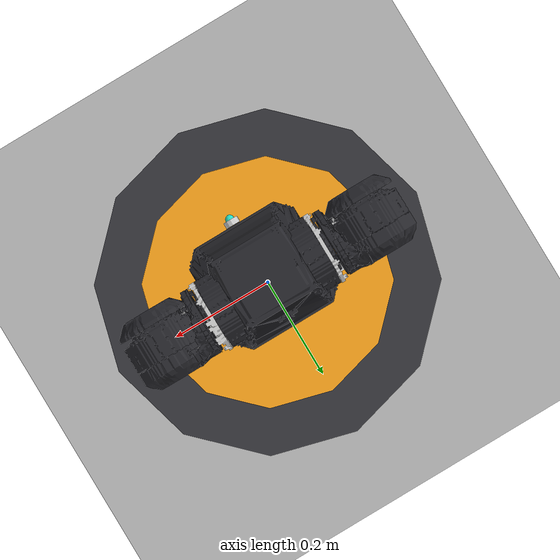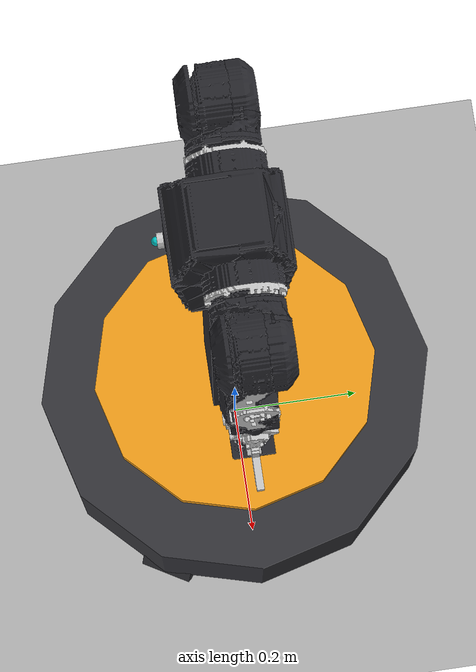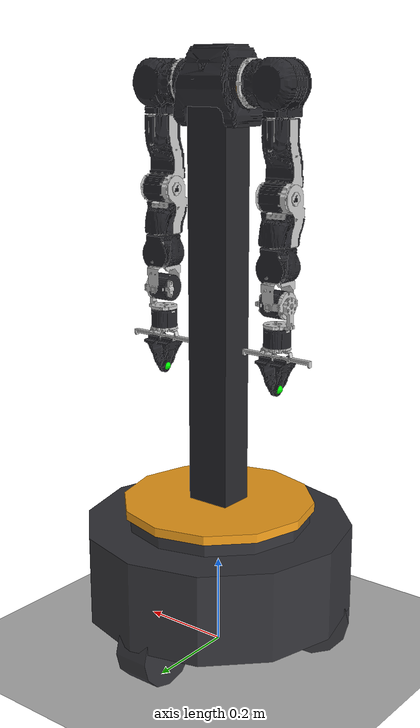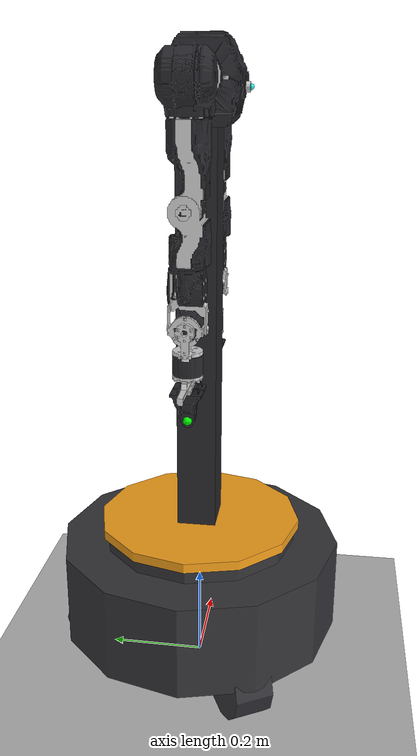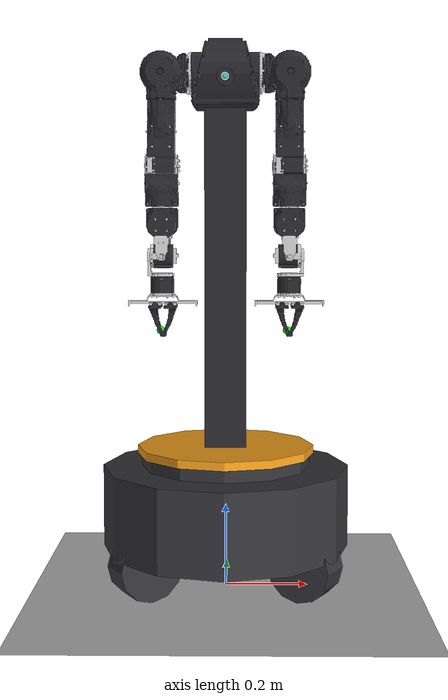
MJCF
<mujoco model="vnr_wh1">

  <compiler angle="radian" meshdir="assets/openarm" inertiafromgeom="auto"/>

  <visual>
    <global offwidth="1920" offheight="1080"/>
  </visual>

  <option gravity="0 0 -9.81" timestep="0.002" integrator="RK4"/>

  <!-- DEFAULTS                                                         -->
  <default>
    <geom condim="4" friction="1.0 0.005 0.0001" solimp="0.9 0.95 0.001" solref="0.02 1"/>

    <default class="wheel">
      <joint type="hinge" damping="0.3" armature="0.005" limited="false"/>
      <velocity gear="1" ctrlrange="-15 15"/>
    </default>

    <!-- OpenArm joint physics from bimanual.xml -->
    <default class="motor_DM8009">
      <joint frictionloss="0.1" damping="0.4" limited="true" type="hinge"/>
    </default>
    <default class="motor_DM4340">
      <joint frictionloss="0.1" damping="0.4" limited="true" type="hinge"/>
    </default>
    <default class="motor_DM4310">
      <joint frictionloss="0.1" damping="0.4" limited="true" type="hinge"/>
    </default>
    <default class="motor_finger">
      <joint limited="true" type="slide" damping="2" stiffness="0.5"/>
    </default>

    <!-- Position actuator classes for arm joints -->
    <default class="arm_DM8009">
      <position kp="120" kv="12" forcelimited="true" forcerange="-40 40"/>
    </default>
    <default class="arm_DM4340">
      <position kp="80" kv="8" forcelimited="true" forcerange="-27 27"/>
    </default>
    <default class="arm_DM4310">
      <position kp="50" kv="5" forcelimited="true" forcerange="-7 7"/>
    </default>
    <default class="arm_finger">
      <position kp="100" kv="5" ctrlrange="0 0.044" forcelimited="true" forcerange="-333 333"/>
    </default>

    <!-- Geom display classes (collision disabled for stability) -->
    <default class="visual">
      <geom contype="0" conaffinity="0" group="2" density="0"/>
    </default>
    <default class="collision">
      <geom contype="0" conaffinity="0" group="3" density="0"/>
    </default>
  </default>

  <!-- ASSETS                                                           -->
  <asset>
    <texture name="grid" type="2d" builtin="checker" rgb1="0.8 0.8 0.8" rgb2="0.6 0.6 0.6"
             width="512" height="512"/>
    <material name="floor_mat"        texture="grid" texrepeat="4 4" reflectance="0.2"/>
    <material name="dark_mat"         rgba="0.20 0.20 0.22 1" reflectance="0.08"/>
    <material name="body_mat"         rgba="0.95 0.62 0.10 1"/>
    <material name="matte_black"      rgba="0.15 0.15 0.17 1" reflectance="0.05" shininess="0.3"/>
    <material name="metal_silver"     rgba="0.796 0.796 0.796 1" reflectance="1.0"  shininess="1.0"/>
    <material name="default_material" rgba="0.7 0.7 0.7 1"/>

    <!-- body_link0 back-plate (kept for kinematic compat; visuals hidden in v0.7) -->
    <mesh name="body_col"  file="collision/body/body_link0.stl" scale="0.001 0.001 0.001"/>
    <mesh name="body_v0"   file="visual/body/body_link0_0.obj"  scale="0.001 0.001 0.001"/>
    <mesh name="body_v1"   file="visual/body/body_link0_1.obj"  scale="0.001 0.001 0.001"/>
    <mesh name="body_v2"   file="visual/body/body_link0_2.obj"  scale="0.001 0.001 0.001"/>
    <mesh name="body_v3"   file="visual/body/body_link0_3.obj"  scale="0.001 0.001 0.001"/>
    <mesh name="body_v4"   file="visual/body/body_link0_4.obj"  scale="0.001 0.001 0.001"/>
    <mesh name="body_v5"   file="visual/body/body_link0_5.obj"  scale="0.001 0.001 0.001"/>

    <!-- Arm collision meshes (right and left-mirror) -->
    <mesh name="link0_col"   file="collision/arm/link0.stl" scale="0.001  0.001 0.001"/>
    <mesh name="link0_col_l" file="collision/arm/link0.stl" scale="0.001 -0.001 0.001"/>
    <mesh name="link1_col"   file="collision/arm/link1.stl" scale="0.001  0.001 0.001"/>
    <mesh name="link1_col_l" file="collision/arm/link1.stl" scale="0.001 -0.001 0.001"/>
    <mesh name="link2_col"   file="collision/arm/link2.stl" scale="0.001  0.001 0.001"/>
    <mesh name="link2_col_l" file="collision/arm/link2.stl" scale="0.001 -0.001 0.001"/>
    <mesh name="link3_col"   file="collision/arm/link3.stl" scale="0.001  0.001 0.001"/>
    <mesh name="link3_col_l" file="collision/arm/link3.stl" scale="0.001 -0.001 0.001"/>
    <mesh name="link4_col"   file="collision/arm/link4.stl" scale="0.001  0.001 0.001"/>
    <mesh name="link5_col"   file="collision/arm/link5.stl" scale="0.001  0.001 0.001"/>
    <mesh name="link5_col_l" file="collision/arm/link5.stl" scale="0.001 -0.001 0.001"/>
    <mesh name="link6_col"   file="collision/arm/link6.stl" scale="0.001  0.001 0.001"/>
    <mesh name="link6_col_l" file="collision/arm/link6.stl" scale="0.001 -0.001 0.001"/>
    <mesh name="link7_col"   file="collision/arm/link7.stl" scale="0.001  0.001 0.001"/>
    <mesh name="link7_col_l" file="collision/arm/link7.stl" scale="0.001 -0.001 0.001"/>
    <mesh name="hand_col"     file="collision/gripper/hand.stl"    scale="0.001 0.001 0.001"/>
    <mesh name="finger_col"   file="collision/gripper/finger.stl"  scale="0.001  0.001 0.001"/>
    <mesh name="finger_col_l" file="collision/gripper/finger.stl"  scale="0.001 -0.001 0.001"/>

    <!-- Arm visual meshes -->
    <mesh name="link0_v0"   file="visual/arm/link0_0.obj" scale="0.001 0.001 0.001"/>
    <mesh name="link0_v1"   file="visual/arm/link0_1.obj" scale="0.001 0.001 0.001"/>
    <mesh name="link1_v0"   file="visual/arm/link1_0.obj" scale="0.001 0.001 0.001"/>
    <mesh name="link1_v2"   file="visual/arm/link1_2.obj" scale="0.001 0.001 0.001"/>
    <mesh name="link1_v3"   file="visual/arm/link1_3.obj" scale="0.001 0.001 0.001"/>
    <mesh name="link2_v0"   file="visual/arm/link2_0.obj" scale="0.001 0.001 0.001"/>
    <mesh name="link2_v1"   file="visual/arm/link2_1.obj" scale="0.001 0.001 0.001"/>
    <mesh name="link2_v2"   file="visual/arm/link2_2.obj" scale="0.001 0.001 0.001"/>
    <mesh name="link3_v0"   file="visual/arm/link3_0.obj" scale="0.001 0.001 0.001"/>
    <mesh name="link3_v1"   file="visual/arm/link3_1.obj" scale="0.001 0.001 0.001"/>
    <mesh name="link3_v2"   file="visual/arm/link3_2.obj" scale="0.001 0.001 0.001"/>
    <mesh name="link4_v0"   file="visual/arm/link4_0.obj" scale="0.001 0.001 0.001"/>
    <mesh name="link4_v1"   file="visual/arm/link4_1.obj" scale="0.001 0.001 0.001"/>
    <mesh name="link4_v2"   file="visual/arm/link4_2.obj" scale="0.001 0.001 0.001"/>
    <mesh name="link5_v0"   file="visual/arm/link5_0.obj" scale="0.001 0.001 0.001"/>
    <mesh name="link5_v1"   file="visual/arm/link5_1.obj" scale="0.001 0.001 0.001"/>
    <mesh name="link5_v2"   file="visual/arm/link5_2.obj" scale="0.001 0.001 0.001"/>
    <mesh name="link6_v0"   file="visual/arm/link6_0.obj" scale="0.001 0.001 0.001"/>
    <mesh name="link6_v1"   file="visual/arm/link6_1.obj" scale="0.001 0.001 0.001"/>
    <mesh name="link6_v0_l" file="visual/arm/link6_0.obj" scale="0.001 -0.001 0.001"/>
    <mesh name="link6_v1_l" file="visual/arm/link6_1.obj" scale="0.001 -0.001 0.001"/>
    <mesh name="link7_v0"   file="visual/arm/link7_0.obj" scale="0.001 0.001 0.001"/>
    <mesh name="link7_v1"   file="visual/arm/link7_1.obj" scale="0.001 0.001 0.001"/>
    <mesh name="link7_v0_l" file="visual/arm/link7_0.obj" scale="0.001 -0.001 0.001"/>
    <mesh name="link7_v1_l" file="visual/arm/link7_1.obj" scale="0.001 -0.001 0.001"/>
    <mesh name="hand_v0"    file="visual/gripper/hand_0.obj"    scale="0.001 0.001 0.001"/>
    <mesh name="hand_v1"    file="visual/gripper/hand_1.obj"    scale="0.001 0.001 0.001"/>
    <mesh name="finger_v0"   file="visual/gripper/finger_0.obj" scale="0.001  0.001 0.001"/>
    <mesh name="finger_v1"   file="visual/gripper/finger_1.obj" scale="0.001  0.001 0.001"/>
    <mesh name="finger_v0_l" file="visual/gripper/finger_0.obj" scale="0.001 -0.001 0.001"/>
    <mesh name="finger_v1_l" file="visual/gripper/finger_1.obj" scale="0.001 -0.001 0.001"/>
  </asset>

  <!-- WORLD                                                            -->
  <worldbody>
    <light name="sky"   pos="0 0 6"   dir="0 0 -1"    ambient="0.25 0.25 0.25" diffuse="1.0 1.0 1.0" specular="0.3 0.3 0.3" castshadow="false"/>
    <light name="fill"  pos="3 -3 4"  dir="-1 1 -1"   ambient="0.10 0.10 0.10" diffuse="0.5 0.5 0.6" specular="0 0 0"         castshadow="false"/>
    <light name="front" pos="0 6 3"   dir="0 -1 -0.4" ambient="0.10 0.10 0.10" diffuse="0.6 0.6 0.6" specular="0.15 0.15 0.15" castshadow="false"/>
    <geom name="floor" type="plane" size="8 8 0.1" material="floor_mat" condim="3"/>

    <body name="base" pos="0 0 0.20">
      <freejoint name="root"/>
      <geom name="base_geom" type="cylinder" size="0.30 0.10" material="dark_mat" mass="20"/>
      <site name="imu" pos="0 0 0" size="0.01"/>

      <!-- 3× omnidirectional wheels -->
      <body name="wheel_f"  pos="0 0.22 -0.12">
        <joint name="wheel_f" class="wheel" axis="1 0 0"/>
        <geom type="cylinder" size="0.080 0.040" zaxis="1 0 0" material="dark_mat" mass="0.8" friction="2 0.01 0.001"/>
        <geom type="cylinder" size="0.055 0.039" zaxis="1 0 0" material="body_mat" mass="0"/>
      </body>
      <body name="wheel_bl" pos="-0.19 -0.11 -0.12">
        <joint name="wheel_bl" class="wheel" axis="-0.5 0.866 0"/>
        <geom type="cylinder" size="0.080 0.040" zaxis="-0.5 0.866 0" material="dark_mat" mass="0.8" friction="2 0.01 0.001"/>
        <geom type="cylinder" size="0.055 0.039" zaxis="-0.5 0.866 0" material="body_mat" mass="0"/>
      </body>
      <body name="wheel_br" pos="0.19 -0.11 -0.12">
        <joint name="wheel_br" class="wheel" axis="0.5 0.866 0"/>
        <geom type="cylinder" size="0.080 0.040" zaxis="0.5 0.866 0" material="dark_mat" mass="0.8" friction="2 0.01 0.001"/>
        <geom type="cylinder" size="0.055 0.039" zaxis="0.5 0.866 0" material="body_mat" mass="0"/>
      </body>

      <geom name="waist_collar" type="cylinder" size="0.205 0.015"
            pos="0 0 0.115" material="dark_mat"/>
      <geom name="waist_accent" type="cylinder" size="0.215 0.010"
            pos="0 0 0.140" material="body_mat"/>

      <body name="openarm_body_link0" pos="0 0 0.35" quat="0.7071068 0 0 0.7071068">
        <inertial pos="0.0 0.0 0.0" quat="1.0 0.0 0.0 0.0" mass="13.89"
                  diaginertia="1.653 1.653 0.051"/>
        <geom type="mesh" mesh="body_col" class="collision"/>
        <geom type="mesh" material="matte_black"  mesh="body_v0" class="visual" group="4"/>
        <geom type="mesh" material="matte_black"  mesh="body_v1" class="visual" group="4"/>
        <geom type="mesh" material="matte_black"  mesh="body_v2" class="visual" group="4"/>
        <geom type="mesh" material="matte_black"  mesh="body_v3" class="visual" group="4"/>
        <geom type="mesh" material="metal_silver" mesh="body_v4" class="visual" group="4"/>
        <geom name="shoulder_bridge" type="mesh" material="matte_black" mesh="body_v5" class="visual"/>

        <geom name="torso_column" type="box" size="0.040 0.050 0.460"
              pos="0 0 0.240" material="matte_black"/>
        <geom name="torso_band"   type="box" size="0.045 0.055 0.012"
              pos="0 0 0.680" material="body_mat"/>

        <geom name="head_cam_housing" type="cylinder" size="0.020 0.015"
              pos="-0.070 0 0.680" quat="0.7071068 0 0.7071068 0"
              material="matte_black"/>
        <geom name="head_cam_lens"    type="cylinder" size="0.010 0.004"
              pos="-0.090 0 0.680" quat="0.7071068 0 0.7071068 0"
              material="metal_silver"/>
        <site name="head_cam"  pos="-0.095 0 0.680" size="0.006" rgba="0 1 1 0.8"/>

        <!-- =================== LEFT ARM (verbatim from openarm_bimanual.xml) =================== -->
        <body name="openarm_left_link0" pos="0.0 0.031 0.698"
              quat="0.7071054825112363 -0.7071080798594735 0.0 0.0">
          <inertial pos="-0.0009483362816297526 0.0001580207020448382 0.03076860287587199"
                    quat="1.0 0.0 0.0 0.0" mass="1.1432284943239561"
                    diaginertia="0.001128 0.000962 0.00147"/>
          <geom type="mesh" mesh="link0_col_l" class="collision"/>
          <geom type="mesh" material="metal_silver" mesh="link0_v0" class="visual"/>
          <geom type="mesh" material="matte_black"  mesh="link0_v1" class="visual"/>

          <body name="openarm_left_link1" pos="0.0 0.0 0.0625" quat="1.0 0.0 0.0 0.0">
            <joint name="openarm_left_joint1" class="motor_DM8009"
                   range="-3.490659 1.3962629999999998" axis="0 0 1"/>
            <inertial pos="0.0011467657911800769 3.319987657026362e-05 0.05395284380736254"
                      quat="1.0 0.0 0.0 0.0" mass="1.1416684646202298"
                      diaginertia="0.001567 0.001273 0.001016"/>
            <geom pos="-0.0 0.0 -0.0625" type="mesh" mesh="link1_col_l" class="collision"/>
            <geom pos="-0.0 0.0 -0.0625" type="mesh" material="matte_black" mesh="link1_v0" class="visual"/>
            <geom pos="-0.0 0.0 -0.0625" type="mesh" material="matte_black" mesh="link1_v2" class="visual"/>
            <geom pos="-0.0 0.0 -0.0625" type="mesh" material="matte_black" mesh="link1_v3" class="visual"/>

            <body name="openarm_left_link2" pos="-0.0301 0.0 0.06"
                  quat="0.7071067811882787 -0.7071067811848163 0.0 0.0">
              <joint name="openarm_left_joint2" class="motor_DM8009"
                     range="-3.3161253267948965 0.17453267320510335" axis="-1 0 0"/>
              <inertial pos="0.00839629182351943 -2.0145102027597523e-08 0.03256649300522363"
                        quat="1.0 0.0 0.0 0.0" mass="0.2775092746011571"
                        diaginertia="0.000359 0.000376 0.000232"/>
              <geom pos="0.0301 0.0 -0.1225" type="mesh" mesh="link2_col_l" class="collision"/>
              <geom pos="0.0301 0.0 -0.1225" type="mesh" material="matte_black" mesh="link2_v0" class="visual"/>
              <geom pos="0.0301 0.0 -0.1225" type="mesh" material="matte_black" mesh="link2_v1" class="visual"/>
              <geom pos="0.0301 0.0 -0.1225" type="mesh" material="matte_black" mesh="link2_v2" class="visual"/>

              <body name="openarm_left_link3" pos="0.0301 0.0 0.06625" quat="1.0 0.0 0.0 0.0">
                <joint name="openarm_left_joint3" class="motor_DM4340"
                       range="-1.570796 1.570796" axis="0 0 1"/>
                <inertial pos="-0.002104752099628911 0.0005549085042607548 0.08847470545721961"
                          quat="1.0 0.0 0.0 0.0" mass="1.073863338202347"
                          diaginertia="0.004372 0.004319 0.000661"/>
                <geom pos="-0.0 -0.0 -0.18875" type="mesh" mesh="link3_col_l" class="collision"/>
                <geom pos="-0.0 -0.0 -0.18875" type="mesh" material="matte_black"  mesh="link3_v0" class="visual"/>
                <geom pos="-0.0 -0.0 -0.18875" type="mesh" material="matte_black"  mesh="link3_v1" class="visual"/>
                <geom pos="-0.0 -0.0 -0.18875" type="mesh" material="metal_silver" mesh="link3_v2" class="visual"/>

                <body name="openarm_left_link4" pos="-0.0 0.0315 0.15375" quat="1.0 0.0 0.0 0.0">
                  <joint name="openarm_left_joint4" class="motor_DM4340"
                         range="0.0 2.443461" axis="0 1 0"/>
                  <inertial pos="-0.0029006831074562967 -0.03030575826634669 0.06339637422196209"
                            quat="1.0 0.0 0.0 0.0" mass="0.6348534566833373"
                            diaginertia="0.001577 0.001346 0.001104"/>
                  <geom pos="0.0 -0.0315 -0.3425" type="mesh" mesh="link4_col" class="collision"/>
                  <geom pos="0.0 -0.0315 -0.3425" type="mesh" material="matte_black"  mesh="link4_v0" class="visual"/>
                  <geom pos="0.0 -0.0315 -0.3425" type="mesh" material="metal_silver" mesh="link4_v1" class="visual"/>
                  <geom pos="0.0 -0.0315 -0.3425" type="mesh" material="matte_black"  mesh="link4_v2" class="visual"/>

                  <body name="openarm_left_link5" pos="0.0 -0.0315 0.0955" quat="1.0 0.0 0.0 0.0">
                    <joint name="openarm_left_joint5" class="motor_DM4310"
                           range="-1.570796 1.570796" axis="0 0 1"/>
                    <inertial pos="-0.003049665024221911 0.0008866902457326625 0.043079803024980934"
                              quat="1.0 0.0 0.0 0.0" mass="0.6156588026168502"
                              diaginertia="0.000423 0.000445 0.000324"/>
                    <geom pos="-0.0 -0.0 -0.438" type="mesh" mesh="link5_col_l" class="collision"/>
                    <geom pos="-0.0 -0.0 -0.438" type="mesh" material="matte_black"  mesh="link5_v0" class="visual"/>
                    <geom pos="-0.0 -0.0 -0.438" type="mesh" material="metal_silver" mesh="link5_v1" class="visual"/>
                    <geom pos="-0.0 -0.0 -0.438" type="mesh" material="matte_black"  mesh="link5_v2" class="visual"/>

                    <body name="openarm_left_link6" pos="0.0375 0.0 0.1205" quat="1.0 0.0 0.0 0.0">
                      <joint name="openarm_left_joint6" class="motor_DM4310"
                             range="-0.785398 0.785398" axis="1 0 0"/>
                      <inertial pos="-0.037136587005447405 0.00033230528343419053 -9.498374522309838e-05"
                                quat="1.0 0.0 0.0 0.0" mass="0.475202773187987"
                                diaginertia="0.000143 0.000157 0.000159"/>
                      <geom pos="-0.0375 -0.0 -0.5585" type="mesh" mesh="link6_col_l" class="collision"/>
                      <geom pos="-0.0375 -0.0 -0.5585" type="mesh" material="matte_black"  mesh="link6_v0_l" class="visual"/>
                      <geom pos="-0.0375 -0.0 -0.5585" type="mesh" material="metal_silver" mesh="link6_v1_l" class="visual"/>

                      <body name="openarm_left_link7" pos="-0.0375 0.0 0.0" quat="1.0 0.0 0.0 0.0">
                        <joint name="openarm_left_joint7" class="motor_DM4310"
                               range="-1.570796 1.570796" axis="0 -1 0"/>
                        <inertial pos="6.875510271106056e-05 -0.01766175250761268 0.06651945409987448"
                                  quat="1.0 0.0 0.0 0.0" mass="0.4659771327380578"
                                  diaginertia="0.000639 0.000497 0.000342"/>
                        <geom pos="0.0 -0.0 -0.5585" type="mesh" mesh="link7_col_l" class="collision"/>
                        <geom pos="0.0 -0.0 -0.5585" type="mesh" material="metal_silver" mesh="link7_v0_l" class="visual"/>
                        <geom pos="0.0 -0.0 -0.5585" type="mesh" material="matte_black"  mesh="link7_v1_l" class="visual"/>

                        <body name="openarm_left_link8" pos="1e-06 0.0205 0.0" quat="1.0 0.0 0.0 0.0">
                          <body name="openarm_left_hand" pos="0 -0.025 0.1001" quat="1.0 0.0 0.0 0.0">
                            <inertial pos="0.0 0.002 0.01" quat="1.0 0.0 0.0 0.0" mass="0.15"
                                      diaginertia="0.0001 0.00025 0.00017"/>
                            <geom pos="0.0 0.005 -0.6585" type="mesh" mesh="hand_col" class="collision"/>
                            <geom pos="0.0 0.005 -0.6585" type="mesh" material="metal_silver" mesh="hand_v0" class="visual"/>
                            <geom pos="0.0 0.005 -0.6585" type="mesh" material="metal_silver" mesh="hand_v1" class="visual"/>
                            <site name="l_tcp" pos="0 0 0.08" size="0.01" rgba="0 1 0 1"/>

                            <body name="openarm_left_right_finger" pos="0 0.00 0.015">
                              <joint name="openarm_left_finger_joint1" class="motor_finger"
                                     range="0.0 0.044" axis="0 -1 0"/>
                              <inertial pos="0.0064528 -0.01702 0.0219685" quat="1.0 0.0 0.0 0.0"
                                        mass="0.03602545343277134"
                                        diaginertia="2.375e-06 2.375e-06 7.5e-07"/>
                              <geom pos="0.0 0.05 -0.673001" type="mesh" mesh="finger_col_l" class="collision"/>
                              <geom pos="0.0 0.05 -0.673001" type="mesh" material="default_material" mesh="finger_v0_l" class="visual"/>
                              <geom pos="0.0 0.05 -0.673001" type="mesh" material="matte_black"    mesh="finger_v1_l" class="visual"/>
                            </body>
                            <body name="openarm_left_left_finger" pos="0 0.012 0.015">
                              <joint name="openarm_left_finger_joint2" class="motor_finger"
                                     range="0.0 0.044" axis="0 1 0"/>
                              <inertial pos="0.0064528 0.01702 0.0219685" quat="1.0 0.0 0.0 0.0"
                                        mass="0.03602545343277134"
                                        diaginertia="2.375e-06 2.375e-06 7.5e-07"/>
                              <geom pos="0.0 -0.05 -0.673001" type="mesh" mesh="finger_col"  class="collision"/>
                              <geom pos="0.0 -0.05 -0.673001" type="mesh" material="default_material" mesh="finger_v0" class="visual"/>
                              <geom pos="0.0 -0.05 -0.673001" type="mesh" material="matte_black"    mesh="finger_v1" class="visual"/>
                            </body>
                          </body>
                        </body>
                      </body>
                    </body>
                  </body>
                </body>
              </body>
            </body>
          </body>
        </body>

        <!-- =================== RIGHT ARM (verbatim from openarm_bimanual.xml) ================== -->
        <body name="openarm_right_link0" pos="0.0 -0.031 0.698"
              quat="0.7071054825112363 0.7071080798594735 0.0 0.0">
          <inertial pos="-0.0009483362816297526 0.0001580207020448382 0.03076860287587199"
                    quat="1.0 0.0 0.0 0.0" mass="1.1432284943239561"
                    diaginertia="0.001128 0.000962 0.00147"/>
          <geom type="mesh" mesh="link0_col" class="collision"/>
          <geom type="mesh" material="metal_silver" mesh="link0_v0" class="visual"/>
          <geom type="mesh" material="matte_black"  mesh="link0_v1" class="visual"/>

          <body name="openarm_right_link1" pos="0.0 0.0 0.0625" quat="1.0 0.0 0.0 0.0">
            <joint name="openarm_right_joint1" class="motor_DM8009"
                   range="-1.396263 3.490659" axis="0 0 1"/>
            <inertial pos="0.0011467657911800769 3.319987657026362e-05 0.05395284380736254"
                      quat="1.0 0.0 0.0 0.0" mass="1.1416684646202298"
                      diaginertia="0.001567 0.001273 0.001016"/>
            <geom pos="-0.0 0.0 -0.0625" type="mesh" mesh="link1_col" class="collision"/>
            <geom pos="-0.0 0.0 -0.0625" type="mesh" material="matte_black" mesh="link1_v0" class="visual"/>
            <geom pos="-0.0 0.0 -0.0625" type="mesh" material="matte_black" mesh="link1_v2" class="visual"/>
            <geom pos="-0.0 0.0 -0.0625" type="mesh" material="matte_black" mesh="link1_v3" class="visual"/>

            <body name="openarm_right_link2" pos="-0.0301 0.0 0.06"
                  quat="0.7071067811882787 0.7071067811848163 0.0 0.0">
              <joint name="openarm_right_joint2" class="motor_DM8009"
                     range="-0.17453267320510335 3.3161253267948965" axis="-1 0 0"/>
              <inertial pos="0.00839629182351943 -2.0145102027597523e-08 0.03256649300522363"
                        quat="1.0 0.0 0.0 0.0" mass="0.2775092746011571"
                        diaginertia="0.000359 0.000376 0.000232"/>
              <geom pos="0.0301 0.0 -0.1225" type="mesh" mesh="link2_col" class="collision"/>
              <geom pos="0.0301 0.0 -0.1225" type="mesh" material="matte_black" mesh="link2_v0" class="visual"/>
              <geom pos="0.0301 0.0 -0.1225" type="mesh" material="matte_black" mesh="link2_v1" class="visual"/>
              <geom pos="0.0301 0.0 -0.1225" type="mesh" material="matte_black" mesh="link2_v2" class="visual"/>

              <body name="openarm_right_link3" pos="0.0301 0.0 0.06625" quat="1.0 0.0 0.0 0.0">
                <joint name="openarm_right_joint3" class="motor_DM4340"
                       range="-1.570796 1.570796" axis="0 0 1"/>
                <inertial pos="-0.002104752099628911 0.0005549085042607548 0.08847470545721961"
                          quat="1.0 0.0 0.0 0.0" mass="1.073863338202347"
                          diaginertia="0.004372 0.004319 0.000661"/>
                <geom pos="-0.0 -0.0 -0.18875" type="mesh" mesh="link3_col" class="collision"/>
                <geom pos="-0.0 -0.0 -0.18875" type="mesh" material="matte_black"  mesh="link3_v0" class="visual"/>
                <geom pos="-0.0 -0.0 -0.18875" type="mesh" material="matte_black"  mesh="link3_v1" class="visual"/>
                <geom pos="-0.0 -0.0 -0.18875" type="mesh" material="metal_silver" mesh="link3_v2" class="visual"/>

                <body name="openarm_right_link4" pos="-0.0 0.0315 0.15375" quat="1.0 0.0 0.0 0.0">
                  <joint name="openarm_right_joint4" class="motor_DM4340"
                         range="0.0 2.443461" axis="0 1 0"/>
                  <inertial pos="-0.0029006831074562967 -0.03030575826634669 0.06339637422196209"
                            quat="1.0 0.0 0.0 0.0" mass="0.6348534566833373"
                            diaginertia="0.001577 0.001346 0.001104"/>
                  <geom pos="0.0 -0.0315 -0.3425" type="mesh" mesh="link4_col" class="collision"/>
                  <geom pos="0.0 -0.0315 -0.3425" type="mesh" material="matte_black"  mesh="link4_v0" class="visual"/>
                  <geom pos="0.0 -0.0315 -0.3425" type="mesh" material="metal_silver" mesh="link4_v1" class="visual"/>
                  <geom pos="0.0 -0.0315 -0.3425" type="mesh" material="matte_black"  mesh="link4_v2" class="visual"/>

                  <body name="openarm_right_link5" pos="0.0 -0.0315 0.0955" quat="1.0 0.0 0.0 0.0">
                    <joint name="openarm_right_joint5" class="motor_DM4310"
                           range="-1.570796 1.570796" axis="0 0 1"/>
                    <inertial pos="-0.003049665024221911 0.0008866902457326625 0.043079803024980934"
                              quat="1.0 0.0 0.0 0.0" mass="0.6156588026168502"
                              diaginertia="0.000423 0.000445 0.000324"/>
                    <geom pos="-0.0 -0.0 -0.438" type="mesh" mesh="link5_col" class="collision"/>
                    <geom pos="-0.0 -0.0 -0.438" type="mesh" material="matte_black"  mesh="link5_v0" class="visual"/>
                    <geom pos="-0.0 -0.0 -0.438" type="mesh" material="metal_silver" mesh="link5_v1" class="visual"/>
                    <geom pos="-0.0 -0.0 -0.438" type="mesh" material="matte_black"  mesh="link5_v2" class="visual"/>

                    <body name="openarm_right_link6" pos="0.0375 0.0 0.1205" quat="1.0 0.0 0.0 0.0">
                      <joint name="openarm_right_joint6" class="motor_DM4310"
                             range="-0.785398 0.785398" axis="1 0 0"/>
                      <inertial pos="-0.037136587005447405 0.00033230528343419053 -9.498374522309838e-05"
                                quat="1.0 0.0 0.0 0.0" mass="0.475202773187987"
                                diaginertia="0.000143 0.000157 0.000159"/>
                      <geom pos="-0.0375 -0.0 -0.5585" type="mesh" mesh="link6_col" class="collision"/>
                      <geom pos="-0.0375 -0.0 -0.5585" type="mesh" material="matte_black"  mesh="link6_v0" class="visual"/>
                      <geom pos="-0.0375 -0.0 -0.5585" type="mesh" material="metal_silver" mesh="link6_v1" class="visual"/>

                      <body name="openarm_right_link7" pos="-0.0375 0.0 0.0" quat="1.0 0.0 0.0 0.0">
                        <joint name="openarm_right_joint7" class="motor_DM4310"
                               range="-1.570796 1.570796" axis="0 1 0"/>
                        <inertial pos="6.875510271106056e-05 -0.01766175250761268 0.06651945409987448"
                                  quat="1.0 0.0 0.0 0.0" mass="0.4659771327380578"
                                  diaginertia="0.000639 0.000497 0.000342"/>
                        <geom pos="0.0 -0.0 -0.5585" type="mesh" mesh="link7_col" class="collision"/>
                        <geom pos="0.0 -0.0 -0.5585" type="mesh" material="metal_silver" mesh="link7_v0" class="visual"/>
                        <geom pos="0.0 -0.0 -0.5585" type="mesh" material="matte_black"  mesh="link7_v1" class="visual"/>

                        <body name="openarm_right_link8" pos="1e-06 0.0205 0.0" quat="1.0 0.0 0.0 0.0">
                          <body name="openarm_right_hand" pos="0 -0.025 0.1001" quat="1.0 0.0 0.0 0.0">
                            <inertial pos="0.0 0.002 0.01" quat="1.0 0.0 0.0 0.0" mass="0.15"
                                      diaginertia="0.0001 0.00025 0.00017"/>
                            <geom pos="0.0 0.005 -0.6585" type="mesh" mesh="hand_col" class="collision"/>
                            <geom pos="0.0 0.005 -0.6585" type="mesh" material="metal_silver" mesh="hand_v0" class="visual"/>
                            <geom pos="0.0 0.005 -0.6585" type="mesh" material="metal_silver" mesh="hand_v1" class="visual"/>
                            <site name="r_tcp" pos="0 0 0.08" size="0.01" rgba="0 1 0 1"/>

                            <body name="openarm_right_right_finger" pos="0 0.00 0.015">
                              <joint name="openarm_right_finger_joint1" class="motor_finger"
                                     range="0.0 0.044" axis="0 -1 0"/>
                              <inertial pos="0.0064528 -0.01702 0.0219685" quat="1.0 0.0 0.0 0.0"
                                        mass="0.03602545343277134"
                                        diaginertia="2.375e-06 2.375e-06 7.5e-07"/>
                              <geom pos="0.0 0.05 -0.673001" type="mesh" mesh="finger_col_l" class="collision"/>
                              <geom pos="0.0 0.05 -0.673001" type="mesh" material="default_material" mesh="finger_v0_l" class="visual"/>
                              <geom pos="0.0 0.05 -0.673001" type="mesh" material="matte_black"    mesh="finger_v1_l" class="visual"/>
                            </body>
                            <body name="openarm_right_left_finger" pos="0 0.012 0.015">
                              <joint name="openarm_right_finger_joint2" class="motor_finger"
                                     range="0.0 0.044" axis="0 1 0"/>
                              <inertial pos="0.0064528 0.01702 0.0219685" quat="1.0 0.0 0.0 0.0"
                                        mass="0.03602545343277134"
                                        diaginertia="2.375e-06 2.375e-06 7.5e-07"/>
                              <geom pos="0.0 -0.05 -0.673001" type="mesh" mesh="finger_col"  class="collision"/>
                              <geom pos="0.0 -0.05 -0.673001" type="mesh" material="default_material" mesh="finger_v0" class="visual"/>
                              <geom pos="0.0 -0.05 -0.673001" type="mesh" material="matte_black"    mesh="finger_v1" class="visual"/>
                            </body>
                          </body>
                        </body>
                      </body>
                    </body>
                  </body>
                </body>
              </body>
            </body>
          </body>
        </body>

      </body> <!-- /openarm_body_link0 -->
    </body> <!-- /base -->
  </worldbody>

  <!-- TENDON + EQUALITY (gripper coupling)                             -->
  <tendon>
    <fixed name="split_left">
      <joint joint="openarm_left_finger_joint1"  coef="0.5"/>
      <joint joint="openarm_left_finger_joint2"  coef="0.5"/>
    </fixed>
    <fixed name="split_right">
      <joint joint="openarm_right_finger_joint1" coef="0.5"/>
      <joint joint="openarm_right_finger_joint2" coef="0.5"/>
    </fixed>
  </tendon>

  <equality>
    <joint joint1="openarm_left_finger_joint1"  joint2="openarm_left_finger_joint2"
           solimp="0.95 0.99 0.001" solref="0.005 1"/>
    <joint joint1="openarm_right_finger_joint1" joint2="openarm_right_finger_joint2"
           solimp="0.95 0.99 0.001" solref="0.005 1"/>
  </equality>

  <!-- ACTUATORS                                                        -->
  <actuator>
    <!-- Wheels -->
    <velocity name="wheel_f"  joint="wheel_f"  class="wheel"/>
    <velocity name="wheel_bl" joint="wheel_bl" class="wheel"/>
    <velocity name="wheel_br" joint="wheel_br" class="wheel"/>

    <!-- Left arm (7-DOF + gripper) -->
    <position name="l_j1" joint="openarm_left_joint1" class="arm_DM8009" ctrlrange="-3.490659 1.396263"/>
    <position name="l_j2" joint="openarm_left_joint2" class="arm_DM8009" ctrlrange="-3.316125 0.174533"/>
    <position name="l_j3" joint="openarm_left_joint3" class="arm_DM4340" ctrlrange="-1.570796 1.570796"/>
    <position name="l_j4" joint="openarm_left_joint4" class="arm_DM4340" ctrlrange="0.0 2.443461"/>
    <position name="l_j5" joint="openarm_left_joint5" class="arm_DM4310" ctrlrange="-1.570796 1.570796"/>
    <position name="l_j6" joint="openarm_left_joint6" class="arm_DM4310" ctrlrange="-0.785398 0.785398"/>
    <position name="l_j7" joint="openarm_left_joint7" class="arm_DM4310" ctrlrange="-1.570796 1.570796"/>
    <position name="l_grip" joint="openarm_left_finger_joint1" class="arm_finger"/>

    <!-- Right arm (7-DOF + gripper) -->
    <position name="r_j1" joint="openarm_right_joint1" class="arm_DM8009" ctrlrange="-1.396263 3.490659"/>
    <position name="r_j2" joint="openarm_right_joint2" class="arm_DM8009" ctrlrange="-0.174533 3.316125"/>
    <position name="r_j3" joint="openarm_right_joint3" class="arm_DM4340" ctrlrange="-1.570796 1.570796"/>
    <position name="r_j4" joint="openarm_right_joint4" class="arm_DM4340" ctrlrange="0.0 2.443461"/>
    <position name="r_j5" joint="openarm_right_joint5" class="arm_DM4310" ctrlrange="-1.570796 1.570796"/>
    <position name="r_j6" joint="openarm_right_joint6" class="arm_DM4310" ctrlrange="-0.785398 0.785398"/>
    <position name="r_j7" joint="openarm_right_joint7" class="arm_DM4310" ctrlrange="-1.570796 1.570796"/>
    <position name="r_grip" joint="openarm_right_finger_joint1" class="arm_finger"/>
  </actuator>

  <!-- CONTACT EXCLUSIONS                                               -->
  <contact>
    <exclude body1="base"               body2="openarm_body_link0"/>
    <exclude body1="openarm_body_link0" body2="openarm_left_link0"/>
    <exclude body1="openarm_body_link0" body2="openarm_right_link0"/>
    <!-- Left arm adjacency -->
    <exclude body1="openarm_left_link0" body2="openarm_left_link1"/>
    <exclude body1="openarm_left_link0" body2="openarm_left_link2"/>
    <exclude body1="openarm_left_link0" body2="openarm_left_link3"/>
    <exclude body1="openarm_left_link1" body2="openarm_left_link2"/>
    <exclude body1="openarm_left_link1" body2="openarm_left_link3"/>
    <exclude body1="openarm_left_link2" body2="openarm_left_link3"/>
    <exclude body1="openarm_left_link3" body2="openarm_left_link4"/>
    <exclude body1="openarm_left_link4" body2="openarm_left_link5"/>
    <exclude body1="openarm_left_link5" body2="openarm_left_link6"/>
    <exclude body1="openarm_left_link5" body2="openarm_left_link7"/>
    <exclude body1="openarm_left_link6" body2="openarm_left_link7"/>
    <exclude body1="openarm_left_hand"  body2="openarm_left_right_finger"/>
    <exclude body1="openarm_left_hand"  body2="openarm_left_left_finger"/>
    <!-- Right arm adjacency -->
    <exclude body1="openarm_right_link0" body2="openarm_right_link1"/>
    <exclude body1="openarm_right_link0" body2="openarm_right_link2"/>
    <exclude body1="openarm_right_link0" body2="openarm_right_link3"/>
    <exclude body1="openarm_right_link1" body2="openarm_right_link2"/>
    <exclude body1="openarm_right_link1" body2="openarm_right_link3"/>
    <exclude body1="openarm_right_link2" body2="openarm_right_link3"/>
    <exclude body1="openarm_right_link3" body2="openarm_right_link4"/>
    <exclude body1="openarm_right_link4" body2="openarm_right_link5"/>
    <exclude body1="openarm_right_link5" body2="openarm_right_link6"/>
    <exclude body1="openarm_right_link5" body2="openarm_right_link7"/>
    <exclude body1="openarm_right_link6" body2="openarm_right_link7"/>
    <exclude body1="openarm_right_hand"  body2="openarm_right_right_finger"/>
    <exclude body1="openarm_right_hand"  body2="openarm_right_left_finger"/>
  </contact>

</mujoco>
